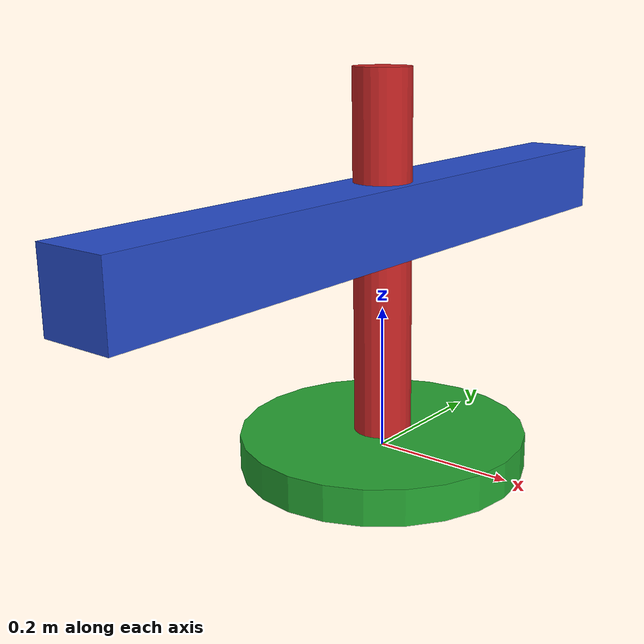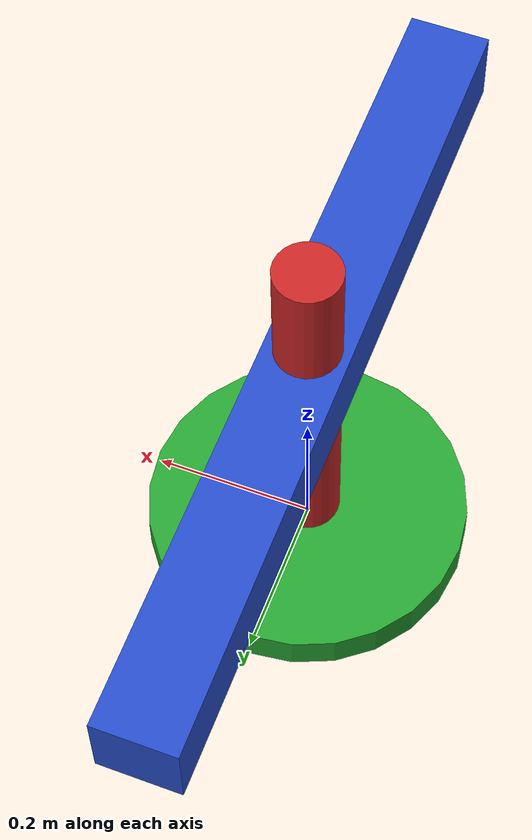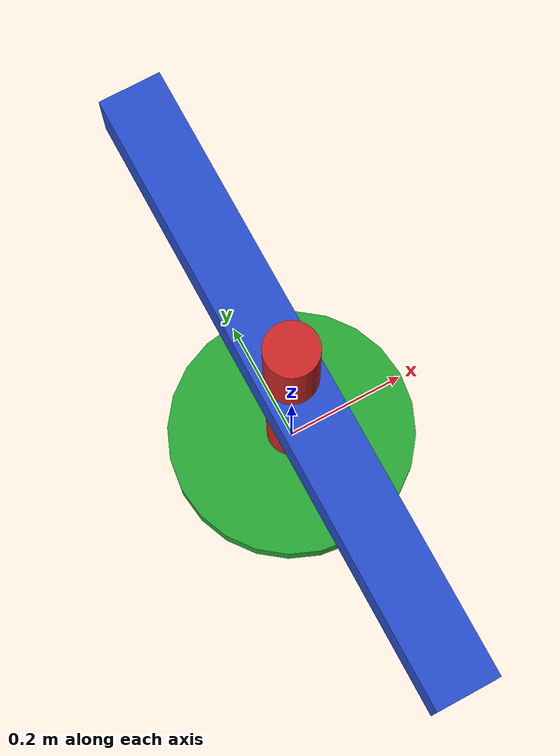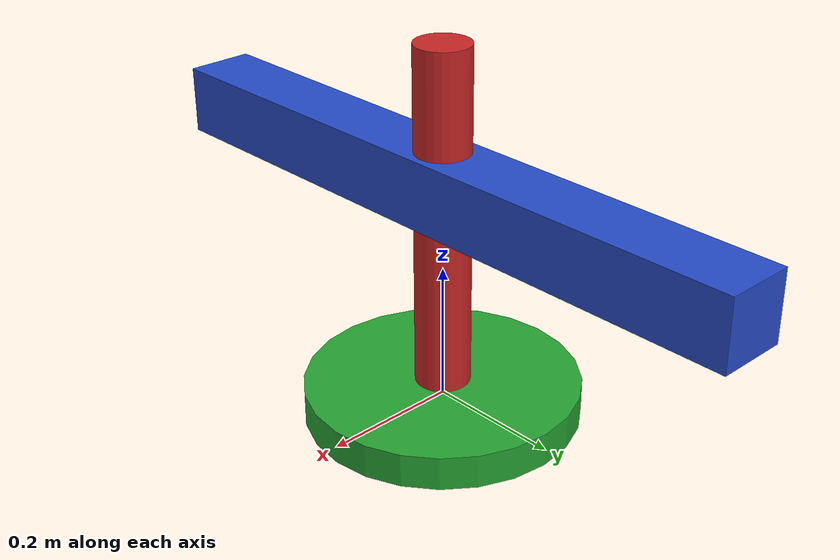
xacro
<?xml version="1.0"?>
<robot xmlns:xacro="http://www.ros.org/wiki/xacro" name = "simples_robot">

<!-- Definição dos parametros do modelo -->

    <!-- Geometria: Link 0 (Base) -->
    <xacro:property name = "link_0_lenght" value = "0.05" />
    <xacro:property name = "link_0_radius" value = "0.2" />

    <!-- Geometria: Link 1 -->
    <xacro:property name = "link_1_lenght" value = "0.5" />
    <xacro:property name = "link_1_radius" value = "0.04" />

    <!-- Geometria: Link 2 -->
    <xacro:property name = "link_2_lenght" value = "1.0" />
    <xacro:property name = "link_2_height" value = "0.1" />
    <xacro:property name = "link_2_width"  value = "0.1" />

    <!-- Geometria: Junta 1 (Revolucao) (Entre o link 0 e link 1) -->
    <xacro:property name = "limits_revolute_upper"    value = "3.14" />
    <xacro:property name = "limits_revolute_lower"    value = "-3.14" />
    <xacro:property name = "limits_revolute_velocity" value = "3.14" />
    <xacro:property name = "limits_revolute_effort"   value = "300" />

    <!-- Geometria: Junta 2 (Prismatica) (Entre o link 1 e link 2) -->
    <xacro:property name = "limits_prismatic_upper"    value = "0.5" />
    <xacro:property name = "limits_prismatic_lower"    value = "-0.5" />
    <xacro:property name = "limits_prismatic_velocity" value = "0.8" />
    <xacro:property name = "limits_prismatic_effort"   value = "300" />

<!-- Incluido propriedades do material: cores -->
<xacro:include filename = "$(find exercicio_5)/urdf/robot.gazebo" />

    <!-- Link 0 -->
    <link name="link_0">
        <visual>
            <geometry>
                <cylinder length="${link_0_lenght}"
                          radius="${link_0_radius}"/>
            </geometry>
			<!-- Origem: o quadro de referência do elemento visual em relação ao quadro de referência do link  -->
			<!-- Angulos rpy - roll, pitch e yaw  -->
			<!-- Eixos xyz -->
			<origin rpy="0 0 0" xyz="0 0 0"/>
            <!-- Sem rotações e deslocamentos -->
		</visual>

        <collision>
            <geometry>
                <cylinder length="${link_0_lenght}"
                          radius="${link_0_radius}"/>
            </geometry>
            <origin rpy = "0 0 0" xyz = "0 0 0"/>
        </collision>

        <inertial>
            <origin rpy = "0 0 0" xyz = "0 0 0"/>
            <mass value = "1"/>
            <inertia ixx = "100" ixy = "0" iyy = "100" iyz = "0" izz = "100" />
        </inertial>
    </link>

    <!-- Junta 1 -->
    <joint name = "joint_1" type = "revolute">
        <parent link = "link_0"/>  <!-- Link 0: -->
        <child  link = "link_1"/>  <!-- Link 2: -->
        <origin xyz = "0 0 ${link_0_lenght/2}"/>    <!-- Origem em xy = 0 e z =0.25 -->
        <axis   xyz = "0 0 1"/>       <!-- Rotaciona em Z -->
        <limit effort   = "${limits_revolute_effort}"
               velocity = "${limits_revolute_velocity}"
               lower    = "${limits_revolute_lower}"
               upper    = "${limits_revolute_upper}"/>
    </joint>

    <!-- Link 1 -->
    <link name="link_1">
        <visual>
            <geometry>
                <cylinder length="${link_1_lenght}"
                          radius="${link_1_radius}"/>
            </geometry>
			<!-- Origem: o quadro de referência do elemento visual em relação ao quadro de referência do link  -->
			<!-- Angulos rpy - roll, pitch e yaw  -->
			<!-- Eixos xyz -->
			<origin rpy="0 0 0" xyz="0 0 ${link_1_lenght/2}"/>
            <!-- Sem rotações e deslocamentos -->
		</visual>

        <collision>
            <geometry>
                <cylinder length="${link_1_lenght}"
                          radius="${link_1_radius}"/>
            </geometry>
            <origin rpy="0 0 0" xyz="0 0 ${link_1_lenght/2}"/>
        </collision>

        <inertial>
            <origin rpy="0 0 0" xyz="0 0 ${link_1_lenght/2}"/>
            <mass value = "1"/>
            <inertia ixx = "100" ixy = "0" iyy = "100" iyz = "0" izz = "100" />
        </inertial>

    </link>

    <!-- Junta 2 -->
    <joint name = "joint_2" type = "prismatic">
        <parent link = "link_1"/>  <!-- Link 1: -->
        <child  link = "link_2"/>  <!-- Link 2: -->
        <origin xyz = "0 0 ${link_1_lenght/2}"/>
        <axis   xyz = "0 1 0"/>       <!-- Move-se em y -->
        <limit effort   = "${limits_prismatic_effort}"
               velocity = "${limits_prismatic_velocity}"
               lower    = "${limits_prismatic_lower}"
               upper    = "${limits_prismatic_upper}"/>
    </joint>

     <!-- Link 2 -->
    <link name="link_2">
        <visual>
            <geometry>
                <box size="${link_2_width} ${link_2_lenght} ${link_2_height}"/>
            </geometry>
			<!-- Origem: o quadro de referência do elemento visual em relação ao quadro de referência do link  -->
			<!-- Angulos rpy - roll, pitch e yaw  -->
			<!-- Eixos xyz -->
			<origin rpy="0 0 0" xyz="0 0 ${link_2_height/2}"/>
            <!-- Sem rotações e deslocamentos -->
		</visual>

        <collision>
            <geometry>
                <box size="${link_2_width} ${link_2_lenght} ${link_2_height}"/>
            </geometry>
            <origin rpy="0 0 0" xyz="0 0 ${link_2_height/2}"/>
        </collision>

        <inertial>
            <origin rpy="0 0 0" xyz="0 0 ${link_2_height/2}"/>
            <mass value = "1"/>
            <inertia ixx = "100" ixy = "0" iyy = "100" iyz = "0" izz = "100" />
        </inertial>
    </link>

</robot>
